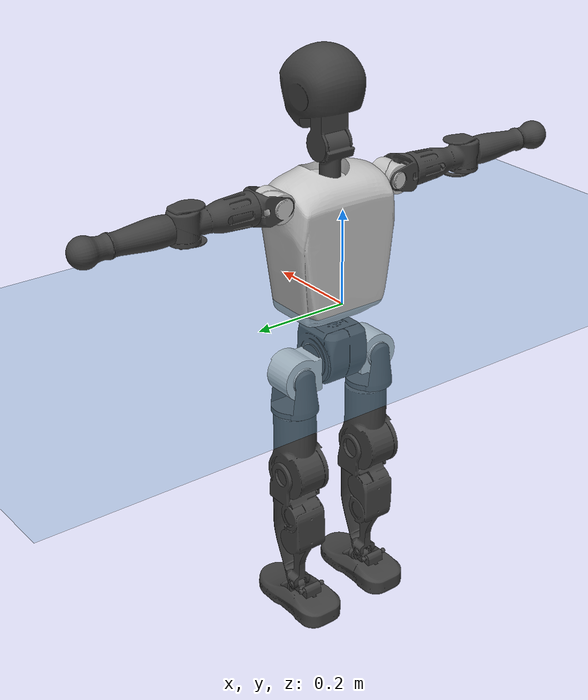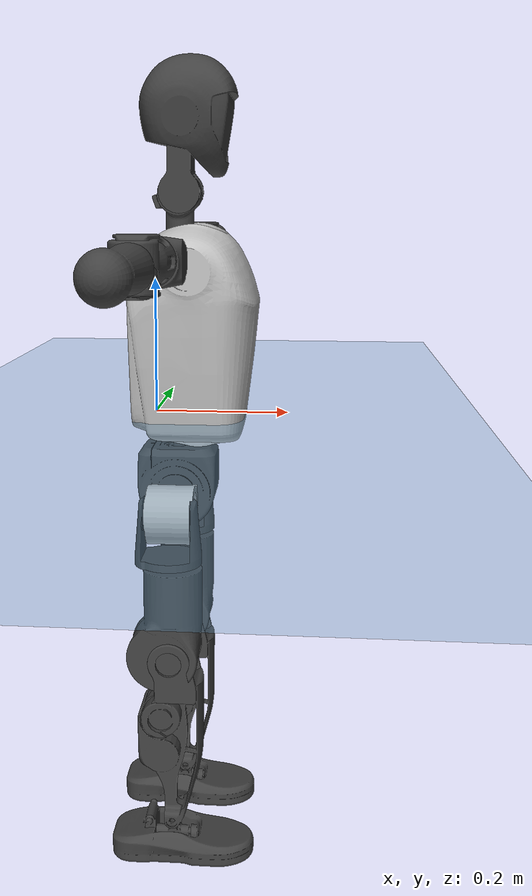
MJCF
<mujoco model="T1">
  <compiler angle="radian" assetdir="assets" balanceinertia="true" inertiafromgeom="false"/>

  <option timestep="0.005" density="1.2" viscosity="2e-05"/>

  <size nkey="1"/>

  <visual>
    <quality shadowsize="8192"/>
    <map shadowclip="0.5"/>
  </visual>

  <default>
    <default class="/">
      <joint armature="0.01" damping="0.01" frictionloss="0.1"/>
      <geom contype="0" conaffinity="0" group="1" solref="-1000 -80"/>
      <site size="0.01 0.005 0.005" group="5"/>
      <general forcelimited="true" biastype="affine" gainprm="25" biasprm="0 -25 -0.6"/>
      <default class="t1">
        <geom rgba="0.25 0.25 0.25 1"/>
        <default class="visual">
          <geom type="mesh" group="2"/>
        </default>
        <default class="collision">
          <geom group="3"/>
        </default>
        <default class="foot">
          <geom size="0.1115 0.05 0.015" type="box" condim="6" group="4" priority="1" solimp="0.015 1 0.015"/>
        </default>
        <default class="reward_collision_sphere">
          <geom group="5" rgba="1 0 0 1"/>
        </default>
      </default>
    </default>
  </default>

  <asset>
    <texture type="skybox" colorspace="auto" name="//unnamed_texture_0" builtin="gradient" rgb1="0.95 0.95 0.95" rgb2="0.95 0.95 0.95" width="100" height="600"/>
    <texture type="2d" colorspace="auto" name="texplane" builtin="checker" rgb1="0.345 0.575 0.748" rgb2="0.345 0.575 0.748" markrgb="1 1 1" width="512" height="512"/>
    <material name="MatPlane" class="/" texture="texplane" texuniform="true" texrepeat="2 2" specular="0.9"/>
    <mesh name="Trunk" class="/" file="Trunk.stl"/>
    <mesh name="H1" class="/" file="H1.stl"/>
    <mesh name="H2" class="/" file="H2.stl"/>
    <mesh name="AL1" class="/" file="AL1.stl"/>
    <mesh name="AL2" class="/" file="AL2.stl"/>
    <mesh name="AL3" class="/" file="AL3.stl"/>
    <mesh name="left_hand_link" class="/" file="left_hand_link.stl"/>
    <mesh name="AR1" class="/" file="AR1.stl"/>
    <mesh name="AR2" class="/" file="AR2.stl"/>
    <mesh name="AR3" class="/" file="AR3.stl"/>
    <mesh name="right_hand_link" class="/" file="right_hand_link.stl"/>
    <mesh name="Waist" class="/" file="Waist.stl"/>
    <mesh name="Hip_Pitch_Left" class="/" file="Hip_Pitch_Left.stl"/>
    <mesh name="Hip_Roll_Left" class="/" file="Hip_Roll_Left.stl"/>
    <mesh name="Hip_Yaw_Left" class="/" file="Hip_Yaw_Left.stl"/>
    <mesh name="Shank_Left" class="/" file="Shank_Left.stl"/>
    <mesh name="Ankle_Cross_Left" class="/" file="Ankle_Cross_Left.stl"/>
    <mesh name="left_foot_link" class="/" file="left_foot_link.stl"/>
    <mesh name="Hip_Pitch_Right" class="/" file="Hip_Pitch_Right.stl"/>
    <mesh name="Hip_Roll_Right" class="/" file="Hip_Roll_Right.stl"/>
    <mesh name="Hip_Yaw_Right" class="/" file="Hip_Yaw_Right.stl"/>
    <mesh name="Shank_Right" class="/" file="Shank_Right.stl"/>
    <mesh name="Ankle_Cross_Right" class="/" file="Ankle_Cross_Right.stl"/>
    <mesh name="right_foot_link" class="/" file="right_foot_link.stl"/>
  </asset>

  <worldbody>
    <geom name="floor" class="/" size="100 100 0.125" type="plane" group="0" material="MatPlane"/>
    <light name="toplight_shadow" class="/" pos="0 0 5" dir="0.0990148 0.0990148 -0.990148" type="directional" ambient="0.04 0.04 0.04" diffuse="0.55 0.55 0.55" specular="0.12 0.12 0.12"/>
    <light name="toplight_fill" class="/" pos="0 0 5" dir="0.0990148 0.0990148 -0.990148" type="directional" castshadow="false" ambient="0.04 0.04 0.04" diffuse="0.3 0.3 0.3" specular="0.08 0.08 0.08"/>
    <body name="trunk" childclass="t1" pos="0.00117238 -0.000576258 0.000801299" quat="0.999999 -0.000230028 0.000122855 0.00105054">
      <inertial pos="0.0285779 -0.000142889 0.108617" quat="0.999757 0.00462241 -0.0213951 0.00255328" mass="6.24674" diaginertia="0.00367827 0.0408512 0.0702892"/>
      <joint name="//unnamed_joint_0" type="free" armature="0" damping="0" frictionloss="0"/>
      <geom name="//unnamed_geom_1" class="visual" rgba="0.76 0.76 0.76 1" mesh="Trunk"/>
      <geom name="//unnamed_geom_2" class="collision" size="0.0615177 0.0820235 0.123035" pos="0.0315487 0 0.126356" type="box"/>
      <geom name="//unnamed_geom_3" class="reward_collision_sphere" size="0.0943271" pos="0.0315487 0 0.105297"/>
      <geom name="//unnamed_geom_4" class="reward_collision_sphere" size="0.0123035" pos="0.0315487 0.0749636 0"/>
      <geom name="//unnamed_geom_5" class="reward_collision_sphere" size="0.0123035" pos="0.0315487 -0.0749636 0"/>
      <geom name="//unnamed_geom_6" class="reward_collision_sphere" size="0.0123035" pos="0.0315487 0.094366 0.189534"/>
      <geom name="//unnamed_geom_7" class="reward_collision_sphere" size="0.0123035" pos="0.0315487 -0.094366 0.189534"/>
      <site name="imu" pos="0.00991411 -0.0124125 0.00289502" size="0.00820235"/>
      <camera name="track" pos="0 -1.76385 0" quat="0.707107 0.707107 0 0" mode="trackcom"/>
      <camera name="ego_camera" pos="0.0641491 0 0.442247" quat="-0.5 -0.5 0.5 0.5"/>
      <body name="H1" pos="0.0360356 0.00219853 0.258976" quat="0.999999 -0.00106515 -0.000693007 -0.000362968">
        <inertial pos="-0.00205843 0.000281187 0.058141" quat="0.767393 -0.0153085 -0.00720796 0.640953" mass="0.246975" diaginertia="9.7623e-06 0.000124392 0.000198076"/>
        <joint name="AAHead_yaw" pos="0 0 0" axis="-0.0070112 -0.00396832 0.999968" range="-1.57201 1.62166" armature="0.00777966" damping="0.018636" frictionloss="0.089846"/>
        <geom name="//unnamed_geom_8" class="visual" mesh="H1"/>
        <body name="H2" pos="0.00191947 0.000401829 0.0646089" quat="1 -1.15985e-05 2.64269e-05 5.0254e-05">
          <inertial pos="0.0047375 0.00380499 0.10435" quat="0.988872 0.104691 -0.0806932 -0.0682747" mass="0.335915" diaginertia="7.65356e-05 0.000981768 0.00221321"/>
          <joint name="Head_pitch" pos="0 0 0" axis="-0.000281899 -0.999999 0.00115391" range="-1.16945 0.355232" armature="0.00856947" damping="0.0129732" frictionloss="0.0826713"/>
          <geom name="//unnamed_geom_9" class="visual" mesh="H2"/>
          <geom name="//unnamed_geom_10" class="collision" size="0.0656188" pos="0.00525812 0 0.115827"/>
          <geom name="//unnamed_geom_11" class="reward_collision_sphere" size="0.0738212" pos="0.0105162 0 0.105297"/>
        </body>
      </body>
      <body name="AL1" pos="0.0336702 0.0921271 0.232459" quat="1 -7.30642e-05 0.000616949 5.05451e-05">
        <inertial pos="0.00224495 0.0376535 -0.00015393" quat="0.509062 0.495137 -0.51008 0.485297" mass="0.3077" diaginertia="5.73934e-05 0.000722533 0.000391207"/>
        <joint name="Left_Shoulder_Pitch" pos="0 0 0" axis="-0.00528068 0.999985 -0.00164723" range="-3.25942 1.21344" armature="0.00869928" damping="0.0113509" frictionloss="0.0781285"/>
        <geom name="//unnamed_geom_12" class="visual" rgba="0.76 0.76 0.76 1" mesh="AL1"/>
        <body name="AL2" pos="0.00373432 0.0407295 0.00138132" quat="0.999999 -0.000705522 0.000840678 0.000845826">
          <inertial pos="0.00292933 0.0307178 0.00198736" quat="0.487978 0.511882 -0.48856 0.511042" mass="0.0862364" diaginertia="1.57851e-05 0.000173787 0.00021955"/>
          <joint name="Left_Shoulder_Roll" pos="0 0 0" axis="-0.999937 -0.0105611 -0.0037167" range="-1.55005 1.75904" armature="0.00841566" damping="0" frictionloss="0.0767631"/>
          <geom name="//unnamed_geom_13" class="visual" mesh="AL2"/>
          <body name="AL3" pos="-0.00186218 0.0539051 0.00268029" quat="1 0.000286947 0.000577645 -0.00044303">
            <inertial pos="0.000702826 0.0777944 -0.000134082" quat="0.706548 0.707666 0.000135696 -0.000125516" mass="0.567318" diaginertia="0.000532215 0.0070768 0.000832333"/>
            <joint name="Left_Elbow_Pitch" pos="0 0 0" axis="0.00111199 -0.999968 -0.0078972" range="-2.29073 2.2596" armature="0.00856301" damping="0" frictionloss="0.0848177"/>
            <geom name="//unnamed_geom_14" class="visual" mesh="AL3"/>
            <geom name="//unnamed_geom_15" class="collision" size="0.0246071 0.0615177" pos="0 0.0440962 0" quat="0.707105 0.707108 0 0" type="cylinder"/>
            <geom name="//unnamed_geom_16" class="reward_collision_sphere" size="0.0295285"/>
            <body name="left_hand_link" pos="0.00329838 0.13065 0.000680346" quat="1 -0.000111025 -0.000108799 2.76202e-05">
              <inertial pos="-0.00348874 0.0972078 -0.00132268" quat="0.71498 0.699091 -0.00603832 -0.00623736" mass="0.175214" diaginertia="0.000323083 0.00425919 0.000278807"/>
              <joint name="Left_Elbow_Yaw" pos="0 0 0" axis="0.0039447 -0.00171274 0.999991" stiffness="0.0104989" range="-2.4011 -0.0308596" armature="0.00834964" damping="0.0119456" frictionloss="0.0822008"/>
              <geom name="//unnamed_geom_17" class="visual" mesh="left_hand_link"/>
              <geom name="//unnamed_geom_18" class="collision" size="0.0246071 0.0717706" pos="0 0.11465 0" quat="0.707105 0.707108 0 0" type="cylinder"/>
              <geom name="//unnamed_geom_19" class="reward_collision_sphere" size="0.0410118"/>
              <geom name="//unnamed_geom_20" class="reward_collision_sphere" size="0.0287082" pos="0 0.0970117 0"/>
              <geom name="//unnamed_geom_21" class="reward_collision_sphere" size="0.0287082" pos="0 0.189614 0"/>
            </body>
          </body>
        </body>
      </body>
      <body name="AR1" pos="0.0260527 -0.0922244 0.231135" quat="1 -0.000871128 0.000311983 0.000230756">
        <inertial pos="0.0015319 -0.0372486 0.000265554" quat="0.504276 0.495846 -0.50476 0.495036" mass="0.290742" diaginertia="5.33399e-05 0.000699954 0.000381593"/>
        <joint name="Right_Shoulder_Pitch" pos="0 0 0" axis="-0.00512437 -0.999987 5.90439e-05" stiffness="0.000151284" range="-1.22521 3.36252" armature="0.0085488" damping="0.0185272" frictionloss="0.0748875"/>
        <geom name="//unnamed_geom_22" class="visual" rgba="0.76 0.76 0.76 1" mesh="AR1"/>
        <body name="AR2" pos="-0.00391207 -0.03835 0.00136379" quat="1 -0.000561823 0.000248451 -0.000169944">
          <inertial pos="0.000113733 -0.0332943 0.00235855" quat="0.509362 0.49096 -0.510233 0.489051" mass="0.0885166" diaginertia="1.62903e-05 0.000192317 0.000239004"/>
          <joint name="Right_Shoulder_Roll" pos="0 0 0" axis="-0.999862 0.0130062 -0.0103798" stiffness="0.00997677" range="-1.79568 1.53761" armature="0.00906165" damping="0" frictionloss="0.0825745"/>
          <geom name="//unnamed_geom_23" class="visual" mesh="AR2"/>
          <body name="AR3" pos="-0.00294935 -0.0522675 0.00212373" quat="1 -2.67537e-05 -9.36376e-05 -0.000154474">
            <inertial pos="0.00160771 -0.0727532 0.000114771" quat="0.70809 0.706053 -0.00887422 0.00433297" mass="0.558848" diaginertia="0.000499525 0.00677835 0.000776397"/>
            <joint name="Right_Elbow_Pitch" pos="0 0 0" axis="0.0092618 0.999949 0.0040309" stiffness="0.00345201" range="-2.27243 2.24242" armature="0.00849072" damping="0" frictionloss="0.0895332"/>
            <geom name="//unnamed_geom_24" class="visual" mesh="AR3"/>
            <geom name="//unnamed_geom_25" class="collision" size="0.0246071 0.0615177" pos="0 -0.0440962 0" quat="0.707105 0.707108 0 0" type="cylinder"/>
            <geom name="//unnamed_geom_26" class="reward_collision_sphere" size="0.0295285"/>
            <body name="right_hand_link" pos="0.000968984 -0.127978 0.0011747" quat="1 -8.16946e-06 2.07169e-06 -5.058e-06">
              <inertial pos="-0.00138148 -0.0986508 -0.000103978" quat="0.706291 0.707921 -0.000181005 -0.000546787" mass="0.178747" diaginertia="0.000330888 0.00430886 0.000264361"/>
              <joint name="Right_Elbow_Yaw" pos="0 0 0" axis="-0.00299496 -0.00637037 0.999975" range="0.0337382 2.38378" armature="0.00784315" damping="0" frictionloss="0.0875709"/>
              <geom name="//unnamed_geom_27" class="visual" mesh="right_hand_link"/>
              <geom name="//unnamed_geom_28" class="collision" size="0.0246071 0.0717706" pos="0 -0.11465 0" quat="0.707105 0.707108 0 0" type="cylinder"/>
              <geom name="//unnamed_geom_29" class="reward_collision_sphere" size="0.0410118"/>
              <geom name="//unnamed_geom_30" class="reward_collision_sphere" size="0.0287082" pos="0 -0.0970117 0"/>
              <geom name="//unnamed_geom_31" class="reward_collision_sphere" size="0.0287082" pos="0 -0.189614 0"/>
            </body>
          </body>
        </body>
      </body>
      <body name="Waist" pos="0.032179 0.000982536 -0.118608" quat="0.999999 -0.000480083 -0.000417065 0.000913029">
        <inertial pos="-0.000863526 -0.000528225 0.00763908" quat="0.982167 0.00412367 -0.187907 0.00465593" mass="1.39502" diaginertia="0.00020498 0.00288072 0.00582492"/>
        <joint name="Waist" pos="0 0 0" axis="-0.00180648 0.000601626 0.999998" range="-1.6006 1.53544" armature="0.00786395" damping="0.0229378" frictionloss="0.0873424"/>
        <geom name="//unnamed_geom_32" class="visual" mesh="Waist"/>
        <body name="Hip_Pitch_Left" pos="0.000502229 0.0960345 -0.00264187" quat="1 4.50194e-05 6.54603e-06 -1.48958e-05">
          <inertial pos="-0.000446383 -0.00650477 -0.0167694" quat="0.975166 0.221367 0.00436218 0.00530529" mass="0.558231" diaginertia="7.07568e-05 0.000774772 0.00158123"/>
          <joint name="Left_Hip_Pitch" pos="0 0 0" axis="0.0129706 0.999851 -0.0113896" stiffness="0.0091211" range="-1.85202 1.58096" armature="0.00853881" damping="0.00612633" frictionloss="0.0808356"/>
          <geom name="//unnamed_geom_33" class="visual" rgba="0.76 0.76 0.76 1" mesh="Hip_Pitch_Left"/>
          <body name="Hip_Roll_Left" pos="-0.00129239 0.00176805 -0.0202276" quat="1 0.00015631 -8.02495e-05 0.000463262">
            <inertial pos="0.00213582 -0.000603598 -0.0568898" quat="0.707642 -0.00588931 -0.00728993 0.706509" mass="0.219216" diaginertia="7.48885e-05 0.000834904 0.000703954"/>
            <joint name="Left_Hip_Roll" pos="0 0 0" axis="-0.999994 -0.0021169 -0.00282061" stiffness="0.010835" range="-1.60801 0.180338" armature="0.00739534" damping="0.00247284" frictionloss="0.071589"/>
            <geom name="//unnamed_geom_34" class="visual" mesh="Hip_Roll_Left"/>
            <geom name="//unnamed_geom_35" class="reward_collision_sphere" size="0.045113"/>
            <body name="Hip_Yaw_Left" pos="0.00244693 -0.00300654 -0.084698" quat="1 -0.000498149 0.000337641 9.88072e-05">
              <inertial pos="-0.00147647 -0.00377688 -0.0967931" quat="0.704698 -0.0293568 -0.0363807 0.707965" mass="1.17023" diaginertia="0.000983995 0.0130832 0.00328788"/>
              <joint name="Left_Hip_Yaw" pos="0 0 0" axis="0.00694363 -0.011791 -0.999906" stiffness="0.012605" range="-1.05445 0.988511" armature="0.00821708" damping="0.016473" frictionloss="0.0809627"/>
              <geom name="//unnamed_geom_36" class="visual" mesh="Hip_Yaw_Left"/>
              <geom name="//unnamed_geom_37" class="collision" size="0.0410118 0.0656188" type="cylinder"/>
              <body name="Shank_Left" pos="-0.00385983 -0.00119415 -0.144214" quat="1 2.72513e-05 1.01315e-05 -1.10706e-05">
                <inertial pos="-0.000598124 0.00259254 -0.128199" quat="0.997046 0.00438713 -0.0367593 0.0672935" mass="0.929951" diaginertia="0.00139005 0.0175421 0.002421"/>
                <joint name="Left_Knee_Pitch" pos="0 0 0" axis="-0.00279694 0.999996 0.000669255" range="-0.02215 2.34776" armature="0.00796645" damping="0.0218313" frictionloss="0.0735852"/>
                <geom name="//unnamed_geom_38" class="visual" mesh="Shank_Left"/>
                <geom name="//unnamed_geom_39" class="collision" size="0.0410118 0.0615177" pos="0 0 -0.126356" type="cylinder"/>
                <geom name="//unnamed_geom_40" class="reward_collision_sphere" size="0.0533153"/>
                <body name="Ankle_Cross_Left" pos="0.000618205 -0.0028381 -0.292315" quat="1 0.000341308 -0.000315042 -9.50843e-05">
                  <inertial pos="-0.00260794 0.00214627 -0.00957419" quat="0.445022 0.546625 0.550997 0.446719" mass="0.0412769" diaginertia="1.22793e-06 1.39779e-05 1.54705e-05"/>
                  <joint name="Left_Ankle_Pitch" pos="0 0 0" axis="0.00112781 0.999999 -0.000378638" range="-0.865055 0.329121" armature="0.00709263" damping="0" frictionloss="0.0723504"/>
                  <geom name="//unnamed_geom_41" class="visual" mesh="Ankle_Cross_Left"/>
                  <body name="left_foot_link" pos="-0.00239607 0.00132254 -0.0152807" quat="1 -3.92647e-06 -8.90323e-06 8.71238e-06">
                    <inertial pos="0.00197351 0.00102287 -0.0093468" quat="0.00505979 0.622811 -0.00644785 0.78233" mass="0.372852" diaginertia="0.000110521 0.00133256 0.00289415"/>
                    <joint name="Left_Ankle_Roll" pos="0 0 0" axis="-0.999999 -0.00118735 0.00122036" stiffness="0.00958048" range="-0.404843 0.397634" armature="0.0084835" damping="0.0251857" frictionloss="0.0746279"/>
                    <geom name="//unnamed_geom_42" class="visual" mesh="left_foot_link"/>
                    <geom name="left_foot" class="foot" size="0.0917959 0.0454065 0.0114579" pos="0.00525812 0 -0.0157945"/>
                    <geom name="//unnamed_geom_44" class="reward_collision_sphere" size="0.0426522" pos="0.00525812 0 -0.0157945"/>
                    <geom name="//unnamed_geom_45" class="reward_collision_sphere" size="0.0246071" pos="0.0499522 -0.0202843 -0.0157945"/>
                    <geom name="//unnamed_geom_46" class="reward_collision_sphere" size="0.0246071" pos="-0.0368069 -0.0202843 -0.0157945"/>
                    <site name="left_foot" class="foot" pos="0.00525812 0 -0.0157945" size="0.00820235"/>
                  </body>
                </body>
              </body>
            </body>
          </body>
        </body>
        <body name="Hip_Pitch_Right" pos="-0.00179454 -0.0930355 -0.00132394" quat="1 0.000183521 -0.000111986 4.29593e-05">
          <inertial pos="-0.00135489 0.00628953 -0.0183499" quat="0.974491 -0.223226 0.0225744 0.00530914" mass="0.571956" diaginertia="7.44624e-05 0.000763477 0.00165952"/>
          <joint name="Right_Hip_Pitch" pos="0 0 0" axis="-0.0106924 -0.999933 -0.00452395" range="-1.49922 1.75453" armature="0.00842297" damping="0.00672068" frictionloss="0.0893372"/>
          <geom name="//unnamed_geom_47" class="visual" rgba="0.76 0.76 0.76 1" mesh="Hip_Pitch_Right"/>
          <body name="Hip_Roll_Right" pos="-0.00232964 0.000554649 -0.0184113" quat="1 -1.2292e-05 -1.23835e-05 2.09994e-05">
            <inertial pos="-0.00151237 -0.000531964 -0.0565948" quat="0.70984 -0.00614232 -0.0187976 0.704085" mass="0.213293" diaginertia="7.04423e-05 0.000784229 0.000654731"/>
            <joint name="Right_Hip_Roll" pos="0 0 0" axis="-0.999951 0.00652031 -0.00741663" range="-0.208952 1.51803" armature="0.00756689" damping="0.017646" frictionloss="0.0914588"/>
            <geom name="//unnamed_geom_48" class="visual" mesh="Hip_Roll_Right"/>
            <geom name="//unnamed_geom_49" class="reward_collision_sphere" size="0.045113"/>
            <body name="Hip_Yaw_Right" pos="0.0035171 0.00270486 -0.0860301" quat="1 -0.0002889 -0.000242635 0.000433892">
              <inertial pos="-0.00158153 -0.00175638 -0.0956216" quat="0.719482 -0.0191155 -0.026361 0.693747" mass="1.19494" diaginertia="0.00102669 0.0131655 0.00318614"/>
              <joint name="Right_Hip_Yaw" pos="0 0 0" axis="0.00155365 -0.00235361 -0.999996" range="-1.05624 1.05886" armature="0.0073307" damping="0" frictionloss="0.0827084"/>
              <geom name="//unnamed_geom_50" class="visual" mesh="Hip_Yaw_Right"/>
              <geom name="//unnamed_geom_51" class="collision" size="0.0410118 0.0656188" type="cylinder"/>
              <body name="Shank_Right" pos="-0.00365912 0.00221383 -0.140995" quat="1 -7.92459e-05 -0.000160638 6.79713e-06">
                <inertial pos="-0.000528099 -0.00387415 -0.131498" quat="0.99925 -0.000324953 -0.0234513 -0.0308169" mass="1.00889" diaginertia="0.00145629 0.0189633 0.00253487"/>
                <joint name="Right_Knee_Pitch" pos="0 0 0" axis="-0.00406196 -0.999868 0.0157213" stiffness="0.00295459" range="-2.38033 0.000961405" armature="0.00843433" damping="0.0257027" frictionloss="0.0724093"/>
                <geom name="//unnamed_geom_52" class="visual" mesh="Shank_Right"/>
                <geom name="//unnamed_geom_53" class="collision" size="0.0410118 0.0615177" pos="0 0 -0.126356" type="cylinder"/>
                <geom name="//unnamed_geom_54" class="reward_collision_sphere" size="0.0533153"/>
                <body name="Ankle_Cross_Right" pos="0.00265291 0.00145683 -0.296565" quat="1 1.2885e-05 0.000325912 -0.000282644">
                  <inertial pos="-0.00449325 0.000410089 -0.00575836" quat="0.437817 0.553816 0.557217 0.437166" mass="0.0396591" diaginertia="1.15443e-06 1.43516e-05 1.49312e-05"/>
                  <joint name="Right_Ankle_Pitch" pos="0 0 0" axis="-0.000621887 -0.999997 0.00229549" stiffness="0.0110751" range="-0.305108 0.870777" armature="0.00858099" damping="0.0173897" frictionloss="0.0839974"/>
                  <geom name="//unnamed_geom_55" class="visual" mesh="Ankle_Cross_Right"/>
                  <body name="right_foot_link" pos="0.00363526 0.000180186 -0.0138667" quat="1 1.96696e-05 -3.93838e-05 -5.1879e-07">
                    <inertial pos="-0.00238214 0.00218424 -0.010681" quat="-0.000625677 0.626399 0.00291004 0.779497" mass="0.366775" diaginertia="0.000107481 0.00131564 0.00283508"/>
                    <joint name="Right_Ankle_Roll" pos="0 0 0" axis="-0.999996 0.00239148 0.00131921" range="-0.427913 0.412745" armature="0.00745281" damping="0" frictionloss="0.0774374"/>
                    <geom name="//unnamed_geom_56" class="visual" mesh="right_foot_link"/>
                    <geom name="right_foot" class="foot" size="0.108503 0.0456732 0.0136222" pos="0.00525812 0 -0.0157945"/>
                    <geom name="//unnamed_geom_58" class="reward_collision_sphere" size="0.0328094"/>
                    <geom name="//unnamed_geom_59" class="reward_collision_sphere" size="0.0246071" pos="0.00525812 0 -0.0157945"/>
                    <geom name="//unnamed_geom_60" class="reward_collision_sphere" size="0.0246071" pos="0.0499522 0.0202843 -0.0157945"/>
                    <geom name="//unnamed_geom_61" class="reward_collision_sphere" size="0.0246071" pos="-0.0368069 0.0202843 -0.0157945"/>
                    <site name="right_foot" class="foot" pos="0.00525812 0 -0.0157945" size="0.00820235"/>
                  </body>
                </body>
              </body>
            </body>
          </body>
        </body>
      </body>
    </body>
  </worldbody>

  <contact>
    <pair class="/" geom1="floor" geom2="left_foot" name="//unnamed_contact_0"/>
    <pair class="/" geom1="floor" geom2="right_foot" name="//unnamed_contact_1"/>
  </contact>

  <actuator>
    <general name="AAHead_yaw" class="/" joint="AAHead_yaw" forcerange="-5.93388 5.93388" gainprm="22.3315" biasprm="0 -22.3315 -0.489085"/>
    <general name="Head_pitch" class="/" joint="Head_pitch" forcerange="-6.23135 6.23135" gainprm="22.3315" biasprm="0 -22.3315 -0.489085"/>
    <general name="Left_Shoulder_Pitch" class="/" joint="Left_Shoulder_Pitch" forcerange="-15.095 15.095" gainprm="22.3315" biasprm="0 -22.3315 -0.489085"/>
    <general name="Left_Shoulder_Roll" class="/" joint="Left_Shoulder_Roll" forcerange="-14.6788 14.6788" gainprm="22.3315" biasprm="0 -22.3315 -0.489085"/>
    <general name="Left_Elbow_Pitch" class="/" joint="Left_Elbow_Pitch" forcerange="-15.0672 15.0672" gainprm="22.3315" biasprm="0 -22.3315 -0.489085"/>
    <general name="Left_Elbow_Yaw" class="/" joint="Left_Elbow_Yaw" forcerange="-15.8303 15.8303" gainprm="22.3315" biasprm="0 -22.3315 -0.489085"/>
    <general name="Right_Shoulder_Pitch" class="/" joint="Right_Shoulder_Pitch" forcerange="-13.4655 13.4655" gainprm="22.3315" biasprm="0 -22.3315 -0.489085"/>
    <general name="Right_Shoulder_Roll" class="/" joint="Right_Shoulder_Roll" forcerange="-13.3903 13.3903" gainprm="22.3315" biasprm="0 -22.3315 -0.489085"/>
    <general name="Right_Elbow_Pitch" class="/" joint="Right_Elbow_Pitch" forcerange="-14.8817 14.8817" gainprm="22.3315" biasprm="0 -22.3315 -0.489085"/>
    <general name="Right_Elbow_Yaw" class="/" joint="Right_Elbow_Yaw" forcerange="-16.1176 16.1176" gainprm="22.3315" biasprm="0 -22.3315 -0.489085"/>
    <general name="Waist" class="/" joint="Waist" forcerange="-22.8513 22.8513" gainprm="22.3315" biasprm="0 -22.3315 -0.489085"/>
    <general name="Left_Hip_Pitch" class="/" joint="Left_Hip_Pitch" forcerange="-37.0179 37.0179" gainprm="22.3315" biasprm="0 -22.3315 -0.489085"/>
    <general name="Left_Hip_Roll" class="/" joint="Left_Hip_Roll" forcerange="-26.6198 26.6198" gainprm="22.3315" biasprm="0 -22.3315 -0.489085"/>
    <general name="Left_Hip_Yaw" class="/" joint="Left_Hip_Yaw" forcerange="-24.2265 24.2265" gainprm="22.3315" biasprm="0 -22.3315 -0.489085"/>
    <general name="Left_Knee_Pitch" class="/" joint="Left_Knee_Pitch" forcerange="-53.1833 53.1833" gainprm="22.3315" biasprm="0 -22.3315 -0.489085"/>
    <general name="Left_Ankle_Pitch" class="/" joint="Left_Ankle_Pitch" forcerange="-15.141 15.141" gainprm="22.3315" biasprm="0 -22.3315 -0.489085"/>
    <general name="Left_Ankle_Roll" class="/" joint="Left_Ankle_Roll" forcerange="-12.397 12.397" gainprm="22.3315" biasprm="0 -22.3315 -0.489085"/>
    <general name="Right_Hip_Pitch" class="/" joint="Right_Hip_Pitch" forcerange="-36.227 36.227" gainprm="22.3315" biasprm="0 -22.3315 -0.489085"/>
    <general name="Right_Hip_Roll" class="/" joint="Right_Hip_Roll" forcerange="-22.7596 22.7596" gainprm="22.3315" biasprm="0 -22.3315 -0.489085"/>
    <general name="Right_Hip_Yaw" class="/" joint="Right_Hip_Yaw" forcerange="-22.1768 22.1768" gainprm="22.3315" biasprm="0 -22.3315 -0.489085"/>
    <general name="Right_Knee_Pitch" class="/" joint="Right_Knee_Pitch" forcerange="-48.8459 48.8459" gainprm="22.3315" biasprm="0 -22.3315 -0.489085"/>
    <general name="Right_Ankle_Pitch" class="/" joint="Right_Ankle_Pitch" forcerange="-16.994 16.994" gainprm="22.3315" biasprm="0 -22.3315 -0.489085"/>
    <general name="Right_Ankle_Roll" class="/" joint="Right_Ankle_Roll" forcerange="-13.5575 13.5575" gainprm="22.3315" biasprm="0 -22.3315 -0.489085"/>
  </actuator>

  <sensor>
    <gyro site="imu" name="imu_angular_velocity"/>
    <velocimeter site="imu" name="imu_linear_velocity"/>
    <framelinvel objtype="site" objname="left_foot" name="left_foot_global_linear_velocity"/>
    <framelinvel objtype="site" objname="right_foot" name="right_foot_global_linear_velocity"/>
  </sensor>

  <keyframe>
    <key name="home" qpos="0 0 0.6385 1 0 0 0 0 0 0 1.4 0 -0.4 0 -1.4 0 0.4 0 -0.4 0 0 0.8 -0.4 0 0.4 0 0 -0.8 0.4 0"/>
  </keyframe>
</mujoco>
